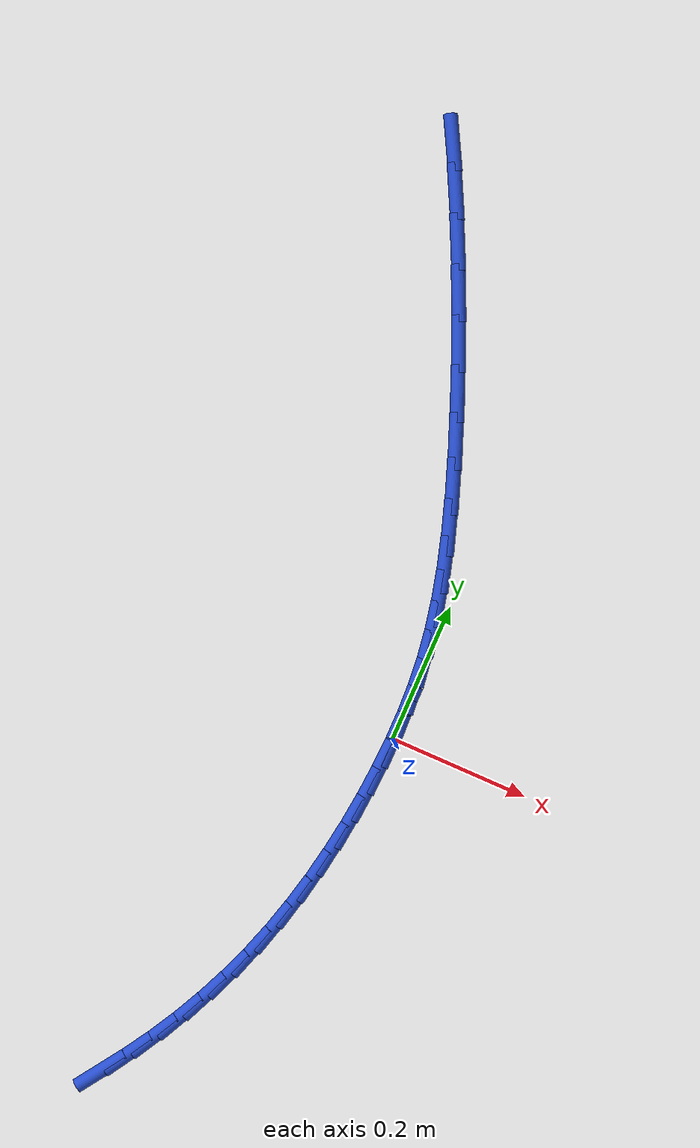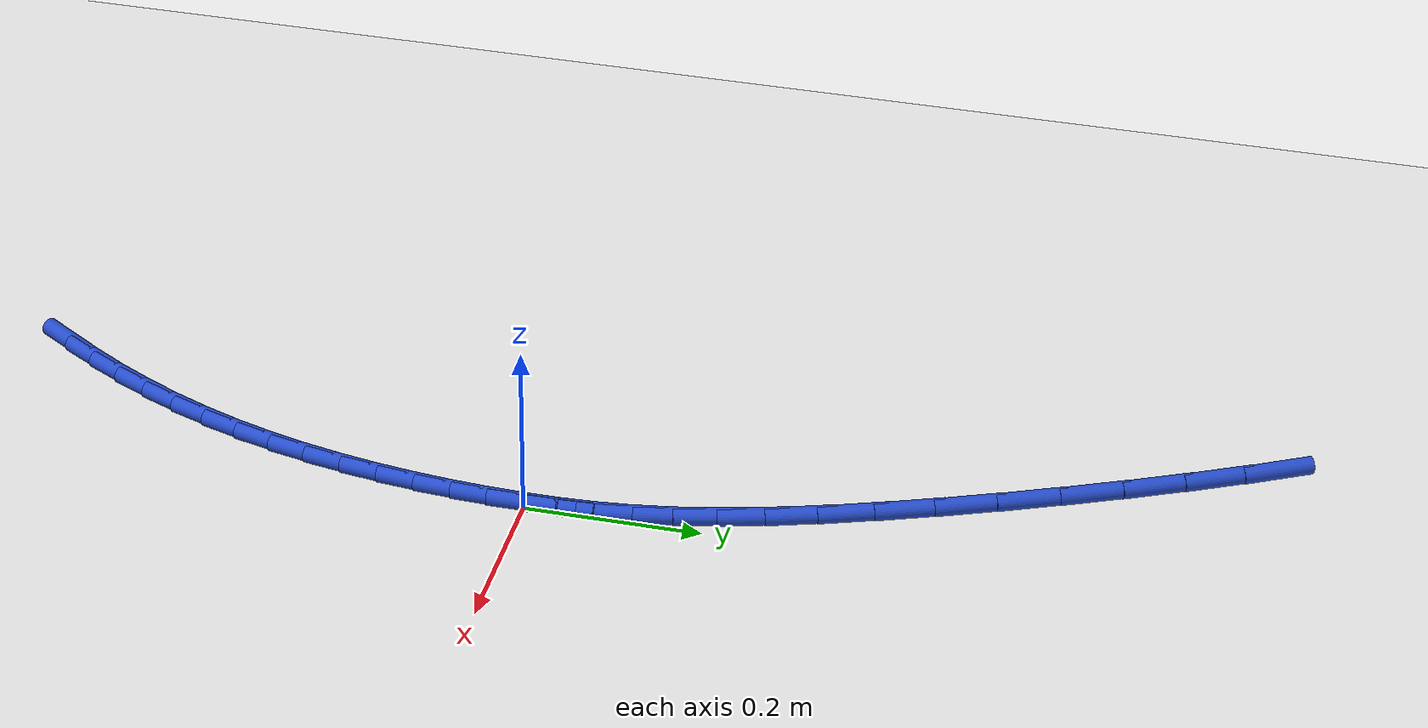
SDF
<sdf version="1.6">
 <world name="default">
  <model name="ground_plane">
   <static>1</static>
   <link name="link">
    <collision name="collision">
     <geometry><plane><normal>0 0 1</normal><size>100 100</size></plane></geometry>
     <surface><friction><ode><mu>100</mu><mu2>50</mu2></ode></friction></surface>
    </collision>
    <visual name="visual">
     <cast_shadows>0</cast_shadows>
     <geometry><plane><normal>0 0 1</normal><size>100 100</size></plane></geometry>
     <material>
      <script><uri>file://media/materials/scripts/gazebo.material</uri><name>Gazebo/WhiteGlow</name></script>
     </material>
    </visual>
   </link>
  </model>
  <model name="line">
   <link name="link_0">
    <pose>3.642919299551295e-17 -1.249000902703301e-16 0.01 0 1.57 1.5675305549018665</pose>
    <collision name="collision">
     <geometry><cylinder><radius>0.01</radius><length>0.08</length></cylinder></geometry>
    </collision>
    <visual name="visual">
     <material>
      <script><name>Gazebo/Blue</name><uri>file://media/materials/scripts/gazebo.material</uri></script>
     </material>
     <geometry><cylinder><radius>0.01</radius><length>0.08</length></cylinder></geometry>
    </visual>
   </link>
   <link name="link_1">
    <pose>0.00013204881284345442 0.040434037563880275 0.01 0 1.57 -1.5289638000909016</pose>
    <collision name="collision">
     <geometry><cylinder><radius>0.01</radius><length>0.08</length></cylinder></geometry>
    </collision>
    <visual name="visual">
     <material>
      <script><name>Gazebo/Blue</name><uri>file://media/materials/scripts/gazebo.material</uri></script>
     </material>
     <geometry><cylinder><radius>0.01</radius><length>0.08</length></cylinder></geometry>
    </visual>
   </link>
   <link name="link_2">
    <pose>-0.0015336639610331732 0.08022941087577645 0.01 0 1.57 -1.4778730629713173</pose>
    <collision name="collision">
     <geometry><cylinder><radius>0.01</radius><length>0.08</length></cylinder></geometry>
    </collision>
    <visual name="visual">
     <material>
      <script><name>Gazebo/Blue</name><uri>file://media/materials/scripts/gazebo.material</uri></script>
     </material>
     <geometry><cylinder><radius>0.01</radius><length>0.08</length></cylinder></geometry>
    </visual>
   </link>
   <link name="link_3">
    <pose>-0.0052633257673743595 0.12025082844981046 0.01 0 1.57 -1.4244533599746951</pose>
    <collision name="collision">
     <geometry><cylinder><radius>0.01</radius><length>0.08</length></cylinder></geometry>
    </collision>
    <visual name="visual">
     <material>
      <script><name>Gazebo/Blue</name><uri>file://media/materials/scripts/gazebo.material</uri></script>
     </material>
     <geometry><cylinder><radius>0.01</radius><length>0.08</length></cylinder></geometry>
    </visual>
   </link>
   <link name="link_4">
    <pose>-0.011323124051924623 0.1613629988001043 0.01 0 1.57 -1.372449942052213</pose>
    <collision name="collision">
     <geometry><cylinder><radius>0.01</radius><length>0.08</length></cylinder></geometry>
    </collision>
    <visual name="visual">
     <material>
      <script><name>Gazebo/Blue</name><uri>file://media/materials/scripts/gazebo.material</uri></script>
     </material>
     <geometry><cylinder><radius>0.01</radius><length>0.08</length></cylinder></geometry>
    </visual>
   </link>
   <link name="link_5">
    <pose>-0.019979246260428477 0.20443063044077986 0.01 0 1.57 -1.3248604023548292</pose>
    <collision name="collision">
     <geometry><cylinder><radius>0.01</radius><length>0.08</length></cylinder></geometry>
    </collision>
    <visual name="visual">
     <material>
      <script><name>Gazebo/Blue</name><uri>file://media/materials/scripts/gazebo.material</uri></script>
     </material>
     <geometry><cylinder><radius>0.01</radius><length>0.08</length></cylinder></geometry>
    </visual>
   </link>
   <link name="link_6">
    <pose>-0.03149787983863044 0.25031843188595915 0.01 0 1.57 -1.2834989397748582</pose>
    <collision name="collision">
     <geometry><cylinder><radius>0.01</radius><length>0.08</length></cylinder></geometry>
    </collision>
    <visual name="visual">
     <material>
      <script><name>Gazebo/Blue</name><uri>file://media/materials/scripts/gazebo.material</uri></script>
     </material>
     <geometry><cylinder><radius>0.01</radius><length>0.08</length></cylinder></geometry>
    </visual>
   </link>
   <link name="link_7">
    <pose>-0.04614521223227501 0.2998911116497641 0.01 0 1.57 -1.2490533181175454</pose>
    <collision name="collision">
     <geometry><cylinder><radius>0.01</radius><length>0.08</length></cylinder></geometry>
    </collision>
    <visual name="visual">
     <material>
      <script><name>Gazebo/Blue</name><uri>file://media/materials/scripts/gazebo.material</uri></script>
     </material>
     <geometry><cylinder><radius>0.01</radius><length>0.08</length></cylinder></geometry>
    </visual>
   </link>
   <link name="link_8">
    <pose>-0.06416881593541561 0.353963282800515 0.01 0 1.57 -1.2213529962305636</pose>
    <collision name="collision">
     <geometry><cylinder><radius>0.01</radius><length>0.08</length></cylinder></geometry>
    </collision>
    <visual name="visual">
     <material>
      <script><name>Gazebo/Blue</name><uri>file://media/materials/scripts/gazebo.material</uri></script>
     </material>
     <geometry><cylinder><radius>0.01</radius><length>0.08</length></cylinder></geometry>
    </visual>
   </link>
   <link name="link_9">
    <pose>-0.0854431952737523 0.41234557964160035 0.01 0 1.57 -1.198368762805631</pose>
    <collision name="collision">
     <geometry><cylinder><radius>0.01</radius><length>0.08</length></cylinder></geometry>
    </collision>
    <visual name="visual">
     <material>
      <script><name>Gazebo/Blue</name><uri>file://media/materials/scripts/gazebo.material</uri></script>
     </material>
     <geometry><cylinder><radius>0.01</radius><length>0.08</length></cylinder></geometry>
    </visual>
   </link>
   <link name="link_10">
    <pose>-0.10949803848147606 0.47392068801270076 0.01 0 1.57 -1.1780766225657335</pose>
    <collision name="collision">
     <geometry><cylinder><radius>0.01</radius><length>0.08</length></cylinder></geometry>
    </collision>
    <visual name="visual">
     <material>
      <script><name>Gazebo/Blue</name><uri>file://media/materials/scripts/gazebo.material</uri></script>
     </material>
     <geometry><cylinder><radius>0.01</radius><length>0.08</length></cylinder></geometry>
    </visual>
   </link>
   <link name="link_11">
    <pose>-0.13585008024350254 0.5375364339356239 0.01 0 1.57 -1.15909679112549</pose>
    <collision name="collision">
     <geometry><cylinder><radius>0.01</radius><length>0.08</length></cylinder></geometry>
    </collision>
    <visual name="visual">
     <material>
      <script><name>Gazebo/Blue</name><uri>file://media/materials/scripts/gazebo.material</uri></script>
     </material>
     <geometry><cylinder><radius>0.01</radius><length>0.08</length></cylinder></geometry>
    </visual>
   </link>
   <link name="link_12">
    <pose>-0.16401605524474738 0.6020406434321773 0.01 0 1.57 -1.1403514220026696</pose>
    <collision name="collision">
     <geometry><cylinder><radius>0.01</radius><length>0.08</length></cylinder></geometry>
    </collision>
    <visual name="visual">
     <material>
      <script><name>Gazebo/Blue</name><uri>file://media/materials/scripts/gazebo.material</uri></script>
     </material>
     <geometry><cylinder><radius>0.01</radius><length>0.08</length></cylinder></geometry>
    </visual>
   </link>
   <link name="link_13">
    <pose>-0.19351269817012612 0.6662811425241687 0.01 0 1.57 -1.1208441162725937</pose>
    <collision name="collision">
     <geometry><cylinder><radius>0.01</radius><length>0.08</length></cylinder></geometry>
    </collision>
    <visual name="visual">
     <material>
      <script><name>Gazebo/Blue</name><uri>file://media/materials/scripts/gazebo.material</uri></script>
     </material>
     <geometry><cylinder><radius>0.01</radius><length>0.08</length></cylinder></geometry>
    </visual>
   </link>
   <link name="link_14">
    <pose>-0.22385674370455444 0.729105757233406 0.01 0 1.57 -1.0994792519023115</pose>
    <collision name="collision">
     <geometry><cylinder><radius>0.01</radius><length>0.08</length></cylinder></geometry>
    </collision>
    <visual name="visual">
     <material>
      <script><name>Gazebo/Blue</name><uri>file://media/materials/scripts/gazebo.material</uri></script>
     </material>
     <geometry><cylinder><radius>0.01</radius><length>0.08</length></cylinder></geometry>
    </visual>
   </link>
   <link name="link_15">
    <pose>-0.25456492653294804 0.7893623135816967 0.01 0 1.57 -1.0748494255696108</pose>
    <collision name="collision">
     <geometry><cylinder><radius>0.01</radius><length>0.08</length></cylinder></geometry>
    </collision>
    <visual name="visual">
     <material>
      <script><name>Gazebo/Blue</name><uri>file://media/materials/scripts/gazebo.material</uri></script>
     </material>
     <geometry><cylinder><radius>0.01</radius><length>0.08</length></cylinder></geometry>
    </visual>
   </link>
   <link name="link_176">
    <pose>-0.1860343362021058 -0.5810367998259078 0.01 0 1.57 0.9693660921817739</pose>
    <collision name="collision">
     <geometry><cylinder><radius>0.01</radius><length>0.08</length></cylinder></geometry>
    </collision>
    <visual name="visual">
     <material>
      <script><name>Gazebo/Blue</name><uri>file://media/materials/scripts/gazebo.material</uri></script>
     </material>
     <geometry><cylinder><radius>0.01</radius><length>0.08</length></cylinder></geometry>
    </visual>
   </link>
   <link name="link_177">
    <pose>-0.16110215015539314 -0.5447051372972597 0.01 0 1.57 1.012977987703724</pose>
    <collision name="collision">
     <geometry><cylinder><radius>0.01</radius><length>0.08</length></cylinder></geometry>
    </collision>
    <visual name="visual">
     <material>
      <script><name>Gazebo/Blue</name><uri>file://media/materials/scripts/gazebo.material</uri></script>
     </material>
     <geometry><cylinder><radius>0.01</radius><length>0.08</length></cylinder></geometry>
    </visual>
   </link>
   <link name="link_178">
    <pose>-0.1377750070095406 -0.5073167712242305 0.01 0 1.57 1.0579310241260715</pose>
    <collision name="collision">
     <geometry><cylinder><radius>0.01</radius><length>0.08</length></cylinder></geometry>
    </collision>
    <visual name="visual">
     <material>
      <script><name>Gazebo/Blue</name><uri>file://media/materials/scripts/gazebo.material</uri></script>
     </material>
     <geometry><cylinder><radius>0.01</radius><length>0.08</length></cylinder></geometry>
    </visual>
   </link>
   <link name="link_179">
    <pose>-0.11612547082004876 -0.4688715310991062 0.01 0 1.57 1.1041514175962095</pose>
    <collision name="collision">
     <geometry><cylinder><radius>0.01</radius><length>0.08</length></cylinder></geometry>
    </collision>
    <visual name="visual">
     <material>
      <script><name>Gazebo/Blue</name><uri>file://media/materials/scripts/gazebo.material</uri></script>
     </material>
     <geometry><cylinder><radius>0.01</radius><length>0.08</length></cylinder></geometry>
    </visual>
   </link>
   <link name="link_180">
    <pose>-0.0962261056424168 -0.4293692464141703 0.01 0 1.57 1.1515392315466961</pose>
    <collision name="collision">
     <geometry><cylinder><radius>0.01</radius><length>0.08</length></cylinder></geometry>
    </collision>
    <visual name="visual">
     <material>
      <script><name>Gazebo/Blue</name><uri>file://media/materials/scripts/gazebo.material</uri></script>
     </material>
     <geometry><cylinder><radius>0.01</radius><length>0.08</length></cylinder></geometry>
    </visual>
   </link>
   <link name="link_181">
    <pose>-0.07814947553214535 -0.38880974666170814 0.01 0 1.57 1.1999679336254827</pose>
    <collision name="collision">
     <geometry><cylinder><radius>0.01</radius><length>0.08</length></cylinder></geometry>
    </collision>
    <visual name="visual">
     <material>
      <script><name>Gazebo/Blue</name><uri>file://media/materials/scripts/gazebo.material</uri></script>
     </material>
     <geometry><cylinder><radius>0.01</radius><length>0.08</length></cylinder></geometry>
    </visual>
   </link>
   <link name="link_182">
    <pose>-0.06196814454473452 -0.34719286133400495 0.01 0 1.57 1.249193788625439</pose>
    <collision name="collision">
     <geometry><cylinder><radius>0.01</radius><length>0.08</length></cylinder></geometry>
    </collision>
    <visual name="visual">
     <material>
      <script><name>Gazebo/Blue</name><uri>file://media/materials/scripts/gazebo.material</uri></script>
     </material>
     <geometry><cylinder><radius>0.01</radius><length>0.08</length></cylinder></geometry>
    </visual>
   </link>
   <link name="link_183">
    <pose>-0.04775232401416581 -0.30452434867323297 0.01 0 1.57 1.296789645735217</pose>
    <collision name="collision">
     <geometry><cylinder><radius>0.01</radius><length>0.08</length></cylinder></geometry>
    </collision>
    <visual name="visual">
     <material>
      <script><name>Gazebo/Blue</name><uri>file://media/materials/scripts/gazebo.material</uri></script>
     </material>
     <geometry><cylinder><radius>0.01</radius><length>0.08</length></cylinder></geometry>
    </visual>
   </link>
   <link name="link_184">
    <pose>-0.03550959716985946 -0.2609677868611209 0.01 0 1.57 1.3407602281285398</pose>
    <collision name="collision">
     <geometry><cylinder><radius>0.01</radius><length>0.08</length></cylinder></geometry>
    </collision>
    <visual name="visual">
     <material>
      <script><name>Gazebo/Blue</name><uri>file://media/materials/scripts/gazebo.material</uri></script>
     </material>
     <geometry><cylinder><radius>0.01</radius><length>0.08</length></cylinder></geometry>
    </visual>
   </link>
   <link name="link_185">
    <pose>-0.02517978778095669 -0.21685750479907023 0.01 0 1.57 1.3817405243375729</pose>
    <collision name="collision">
     <geometry><cylinder><radius>0.01</radius><length>0.08</length></cylinder></geometry>
    </collision>
    <visual name="visual">
     <material>
      <script><name>Gazebo/Blue</name><uri>file://media/materials/scripts/gazebo.material</uri></script>
     </material>
     <geometry><cylinder><radius>0.01</radius><length>0.08</length></cylinder></geometry>
    </visual>
   </link>
   <link name="link_186">
    <pose>-0.016699338628386354 -0.17253635132308934 0.01 0 1.57 1.4204400208376002</pose>
    <collision name="collision">
     <geometry><cylinder><radius>0.01</radius><length>0.08</length></cylinder></geometry>
    </collision>
    <visual name="visual">
     <material>
      <script><name>Gazebo/Blue</name><uri>file://media/materials/scripts/gazebo.material</uri></script>
     </material>
     <geometry><cylinder><radius>0.01</radius><length>0.08</length></cylinder></geometry>
    </visual>
   </link>
   <link name="link_187">
    <pose>-0.01000469249307674 -0.1283471752691839 0.01 0 1.57 1.4575355743382195</pose>
    <collision name="collision">
     <geometry><cylinder><radius>0.01</radius><length>0.08</length></cylinder></geometry>
    </collision>
    <visual name="visual">
     <material>
      <script><name>Gazebo/Blue</name><uri>file://media/materials/scripts/gazebo.material</uri></script>
     </material>
     <geometry><cylinder><radius>0.01</radius><length>0.08</length></cylinder></geometry>
    </visual>
   </link>
   <link name="link_188">
    <pose>-0.005032292155956698 -0.08463282547336223 0.01 0 1.57 1.493700749784972</pose>
    <collision name="collision">
     <geometry><cylinder><radius>0.01</radius><length>0.08</length></cylinder></geometry>
    </collision>
    <visual name="visual">
     <material>
      <script><name>Gazebo/Blue</name><uri>file://media/materials/scripts/gazebo.material</uri></script>
     </material>
     <geometry><cylinder><radius>0.01</radius><length>0.08</length></cylinder></geometry>
    </visual>
   </link>
   <link name="link_189">
    <pose>-0.00171858039795489 -0.0417361507716318 0.01 0 1.57 1.5296423144936566</pose>
    <collision name="collision">
     <geometry><cylinder><radius>0.01</radius><length>0.08</length></cylinder></geometry>
    </collision>
    <visual name="visual">
     <material>
      <script><name>Gazebo/Blue</name><uri>file://media/materials/scripts/gazebo.material</uri></script>
     </material>
     <geometry><cylinder><radius>0.01</radius><length>0.08</length></cylinder></geometry>
    </visual>
   </link>
   <link name="link_190">
    <pose>3.903127820947816e-17 -7.632783294297951e-17 0.01 0 1.57 1.5661482532708473</pose>
    <collision name="collision">
     <geometry><cylinder><radius>0.01</radius><length>0.08</length></cylinder></geometry>
    </collision>
    <visual name="visual">
     <material>
      <script><name>Gazebo/Blue</name><uri>file://media/materials/scripts/gazebo.material</uri></script>
     </material>
     <geometry><cylinder><radius>0.01</radius><length>0.08</length></cylinder></geometry>
    </visual>
   </link>
   <link name="link_191">
    <pose>0.00018700625697942817 0.04023277800552552 0.01 0 1.57 1.5661482532708473</pose>
    <collision name="collision">
     <geometry><cylinder><radius>0.01</radius><length>0.08</length></cylinder></geometry>
    </collision>
    <visual name="visual">
     <material>
      <script><name>Gazebo/Blue</name><uri>file://media/materials/scripts/gazebo.material</uri></script>
     </material>
     <geometry><cylinder><radius>0.01</radius><length>0.08</length></cylinder></geometry>
    </visual>
   </link>
  </model>
 </world>
</sdf>
